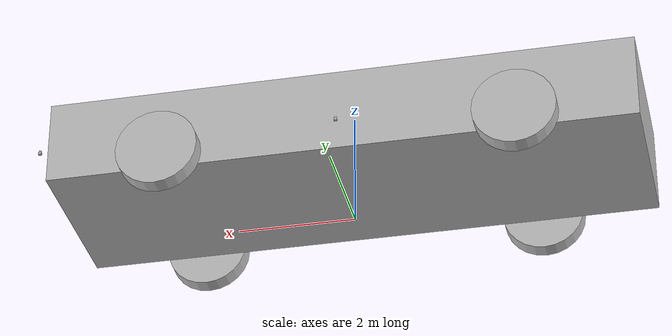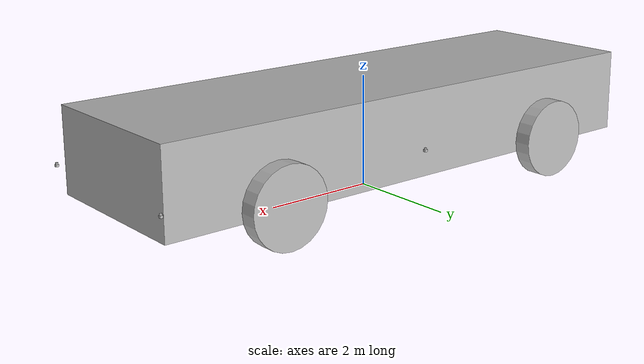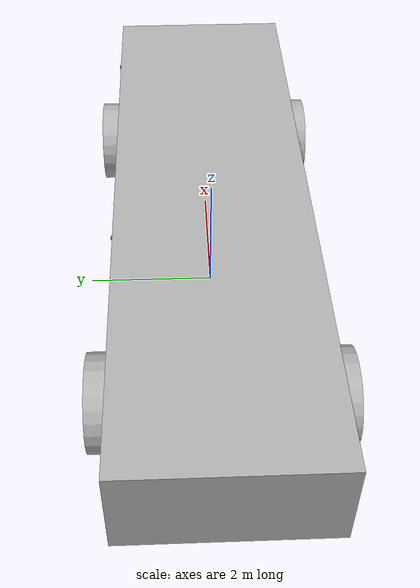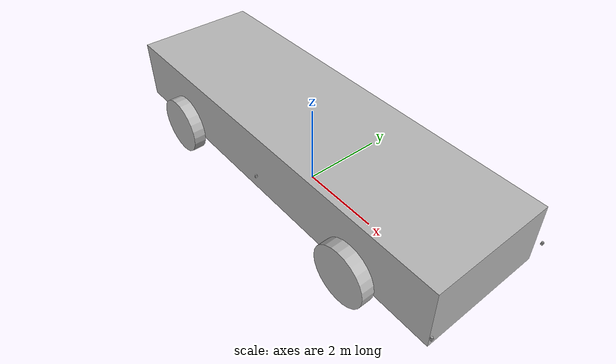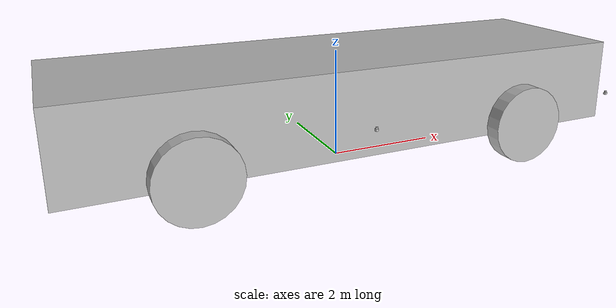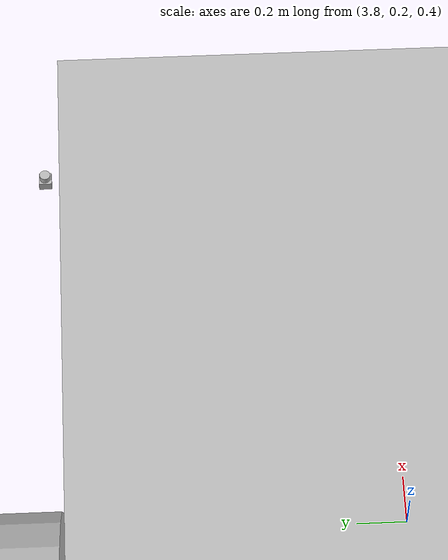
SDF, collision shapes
<?xml version='1.0'?>

<sdf version='1.4'>
    <model name="agv_tno">
        <static>false</static>

        <!-- Main vehicle Body -->
        <link name='chassis'>

            <!-- pose of the vehicle wrt model origin -->
            <pose>0 0 1.25 0 0 0</pose>

            <!-- Inertia of a box: http://en.wikipedia.org/wiki/List_of_moments_of_inertia -->
            <inertial>
                <mass>1000.0</mass>
                <inertia>
                    <ixx>937.5</ixx>  <!-- for a box: ixx = 0.083 * mass * (y*y + z*z) -->
                    <ixy>0.0</ixy>    <!-- for a box: ixy = 0 -->
                    <ixz>0.0</ixz>    <!-- for a box: ixz = 0 -->
                    <iyy>8520.8</iyy>  <!-- for a box: iyy = 0.083 * mass * (x*x + z*z) -->
                    <iyz>0.0</iyz>    <!-- for a box: iyz = 0 -->
                    <izz>9083.3</izz>  <!-- for a box: izz = 0.083 * mass * (x*x + y*y) -->
                </inertia>
            </inertial>

            <!-- Collision box -->
            <collision name='collision'>
                <geometry>
                    <box>
                        <size>10. 3. 1.5</size>
                    </box>
                </geometry>
            </collision>

            <!-- Appearence box -->
            <visual name='visual'>
                <geometry>
                    <box>
                        <size>10. 3. 1.5</size>
                    </box>
                </geometry>
            </visual>

        </link>

        <!-- Front left wheel -->
        <link name="front_left_wheel">

            <pose>3 1.7 0.7 0 1.5707 1.5707</pose>

            <inertial> <!-- Inertia of a cylinder: http://en.wikipedia.org/wiki/List_of_moments_of_inertia -->
                <mass>50.0</mass>
                <inertia>
                    <ixx>6.5</ixx>  <!-- for a cylinder: ixx = 0.083 * mass * (3*radius^2 + height) -->
                    <ixy>0.0</ixy>    <!-- for a cylinder: ixy = 0 -->
                    <ixz>0.0</ixz>    <!-- for a cylinder: ixz = 0 -->
                    <iyy>6.5</iyy> <!-- for a cylinder: iyy = 0.083 * mass * (3*radius^2 + height) -->
                    <iyz>0.0</iyz>    <!-- for a cylinder: iyz = 0 -->
                    <izz>12.25</izz>  <!-- for a cylinder: izz = 0.5 * mass * radius^2 -->
                </inertia>
            </inertial>

            <collision name="collision">
                <geometry>
                    <cylinder>
                    <radius>0.7</radius>
                    <length>0.3</length>
                    </cylinder>
                </geometry>
            </collision>
            <visual name="visual">
                <geometry>
                    <cylinder>
                    <radius>0.7</radius>
                    <length>0.3</length>
                    </cylinder>
                </geometry>
            </visual>
        </link>

        <!-- Front right wheel -->
        <link name="front_right_wheel">

            <pose>3 -1.7 0.7 0 1.5707 1.5707</pose>

            <inertial> <!-- Inertia of a cylinder: http://en.wikipedia.org/wiki/List_of_moments_of_inertia -->
                <mass>50.0</mass>
                <inertia>
                    <ixx>6.5</ixx>  <!-- for a cylinder: ixx = 0.083 * mass * (3*radius^2 + height) -->
                    <ixy>0.0</ixy>    <!-- for a cylinder: ixy = 0 -->
                    <ixz>0.0</ixz>    <!-- for a cylinder: ixz = 0 -->
                    <iyy>6.5</iyy> <!-- for a cylinder: iyy = 0.083 * mass * (3*radius^2 + height) -->
                    <iyz>0.0</iyz>    <!-- for a cylinder: iyz = 0 -->
                    <izz>12.25</izz>  <!-- for a cylinder: izz = 0.5 * mass * radius^2 -->
                </inertia>
            </inertial>

            <collision name="collision">
                <geometry>
                    <cylinder>
                    <radius>0.7</radius>
                    <length>0.3</length>
                    </cylinder>
                </geometry>
            </collision>
            <visual name="visual">
                <geometry>
                    <cylinder>
                    <radius>0.7</radius>
                    <length>0.3</length>
                    </cylinder>
                </geometry>
            </visual>
        </link>

        <!-- Rear left wheel -->
        <link name="rear_left_wheel">

            <pose>-3 1.7 0.7 0 1.5707 1.5707</pose>

            <inertial> <!-- Inertia of a cylinder: http://en.wikipedia.org/wiki/List_of_moments_of_inertia -->
                <mass>50.0</mass>
                <inertia>
                    <ixx>6.5</ixx>  <!-- for a cylinder: ixx = 0.083 * mass * (3*radius^2 + height) -->
                    <ixy>0.0</ixy>    <!-- for a cylinder: ixy = 0 -->
                    <ixz>0.0</ixz>    <!-- for a cylinder: ixz = 0 -->
                    <iyy>6.5</iyy> <!-- for a cylinder: iyy = 0.083 * mass * (3*radius^2 + height) -->
                    <iyz>0.0</iyz>    <!-- for a cylinder: iyz = 0 -->
                    <izz>12.25</izz>  <!-- for a cylinder: izz = 0.5 * mass * radius^2 -->
                </inertia>
            </inertial>

            <collision name="collision">
                <geometry>
                    <cylinder>
                    <radius>0.7</radius>
                    <length>0.3</length>
                    </cylinder>
                </geometry>
            </collision>
            <visual name="visual">
                <geometry>
                    <cylinder>
                    <radius>0.7</radius>
                    <length>0.3</length>
                    </cylinder>
                </geometry>
            </visual>
        </link>

        <!-- Rear right wheel -->
        <link name="rear_right_wheel">

            <pose>-3 -1.7 0.7 0 1.5707 1.5707</pose>

            <inertial> <!-- Inertia of a cylinder: http://en.wikipedia.org/wiki/List_of_moments_of_inertia -->
                <mass>50.0</mass>
                <inertia>
                    <ixx>6.5</ixx>  <!-- for a cylinder: ixx = 0.083 * mass * (3*radius^2 + height) -->
                    <ixy>0.0</ixy>    <!-- for a cylinder: ixy = 0 -->
                    <ixz>0.0</ixz>    <!-- for a cylinder: ixz = 0 -->
                    <iyy>6.5</iyy> <!-- for a cylinder: iyy = 0.083 * mass * (3*radius^2 + height) -->
                    <iyz>0.0</iyz>    <!-- for a cylinder: iyz = 0 -->
                    <izz>12.25</izz>  <!-- for a cylinder: izz = 0.5 * mass * radius^2 -->
                </inertia>
            </inertial>

            <collision name="collision">
                <geometry>
                    <cylinder>
                    <radius>0.7</radius>
                    <length>0.3</length>
                    </cylinder>
                </geometry>
            </collision>
            <visual name="visual">
                <geometry>
                    <cylinder>
                    <radius>0.7</radius>
                    <length>0.3</length>
                    </cylinder>
                </geometry>
            </visual>
        </link>

        <joint name="front_left_wheel_hinge" type="revolute">
            <pose>0 0 -0.05 0 0 0</pose>
            <child>front_left_wheel</child>
            <parent>chassis</parent>
                <axis>
                    <xyz>0 1 0</xyz>
                </axis>
        </joint>

        <joint name="front_right_wheel_hinge" type="revolute">
            <pose>0 0 0.05 0 0 0</pose>
            <child>front_right_wheel</child>
            <parent>chassis</parent>
                <axis>
                    <xyz>0 1 0</xyz>
                </axis>
        </joint>

        <joint name="rear_left_wheel_hinge" type="revolute">
            <pose>0 0 -0.05 0 0 0</pose>
            <child>rear_left_wheel</child>
            <parent>chassis</parent>
                <axis>
                    <xyz>0 1 0</xyz>
                </axis>
        </joint>

        <joint name="rear_right_wheel_hinge" type="revolute">
            <pose>0 0 0.05 0 0 0</pose>
            <child>rear_right_wheel</child>
            <parent>chassis</parent>
                <axis>
                    <xyz>0 1 0</xyz>
                </axis>
        </joint>

        <include>
            <uri>model://hokuyo</uri>
            <name>front_left_lidar</name>
            <pose>5.1 1.6 1.0 0 0 0</pose> <!-- pose in global coordinate frame -->
        </include>

        <include>
            <uri>model://hokuyo</uri>
            <name>front_right_lidar</name>
            <pose>5.1 -1.6 1.0 0 0 0</pose> <!-- pose in global coordinate frame -->
        </include>

        <include>
            <uri>model://hokuyo</uri>
            <name>side_left_lidar</name>
            <pose>0 1.6 1.0 0 0 1.5707</pose> <!-- pose in global coordinate frame -->
        </include>

        <include>
            <uri>model://hokuyo</uri>
            <name>side_right_lidar</name>
            <pose>0 -1.6 1.0 0 0 -1.5707</pose> <!-- pose in global coordinate frame -->
        </include>

        <joint name="front_left_lidar_joint" type="revolute">
            <child>front_left_lidar::link</child>
            <parent>chassis</parent>
            <axis>
                <xyz>0 0 1</xyz>
                <limit>
                    <upper>0</upper>
                    <lower>0</lower>
                </limit>
            </axis>
        </joint>

        <joint name="front_right_lidar_joint" type="revolute">
            <child>front_right_lidar::link</child>
            <parent>chassis</parent>
            <axis>
                <xyz>0 0 1</xyz>
                <limit>
                    <upper>0</upper>
                    <lower>0</lower>
                </limit>
            </axis>
        </joint>

        <joint name="side_left_lidar_joint" type="revolute">
            <child>side_left_lidar::link</child>
            <parent>chassis</parent>
            <axis>
                <xyz>0 0 1</xyz>
                <limit>
                    <upper>0</upper>
                    <lower>0</lower>
                </limit>
            </axis>
        </joint>

        <joint name="side_right_lidar_joint" type="revolute">
            <child>side_right_lidar::link</child>
            <parent>chassis</parent>
            <axis>
                <xyz>0 0 1</xyz>
                <limit>
                    <upper>0</upper>
                    <lower>0</lower>
                </limit>
            </axis>
        </joint>

    </model>

</sdf>

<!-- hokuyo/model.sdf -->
<sdf version="1.5">
  <model name="hokuyo">
    <pose>0 0 0.035 0 0 0</pose>
    <link name="link">
      <inertial>
        <mass>0.1</mass>
      </inertial>
      <visual name="visual">
        <geometry>
          <mesh>
            <uri>model://../model_source/models/hokuyo/meshes/hokuyo.dae</uri>
          </mesh>
        </geometry>
      </visual>
      <collision name="collision-base">
        <pose>0 0 -0.0145 0 0 0</pose>
        <geometry>
          <box>
            <size>0.05 0.05 0.041</size>
          </box>
        </geometry>
      </collision>
      <collision name="collision-top">
        <pose>0 0 0.0205 0 0 0</pose>
        <geometry>
          <cylinder>
            <radius>0.021</radius>
            <length>0.029</length>
          </cylinder>
        </geometry>
      </collision>
      <sensor name="laser" type="ray">
        <pose>0.01 0 0.0175 0 -0 0</pose>
        <ray>
          <scan>
            <horizontal>
              <samples>640</samples>
              <resolution>1</resolution>
              <min_angle>-2.26889</min_angle>
              <max_angle>2.268899</max_angle>
            </horizontal>
          </scan>
          <range>
            <min>0.08</min>
            <max>10</max>
            <resolution>0.01</resolution>
          </range>
        </ray>
        <plugin name="laser" filename="libRayPlugin.so" />
        <always_on>1</always_on>
        <update_rate>30</update_rate>
        <visualize>true</visualize>
      </sensor>
    </link>
  </model>
</sdf>
